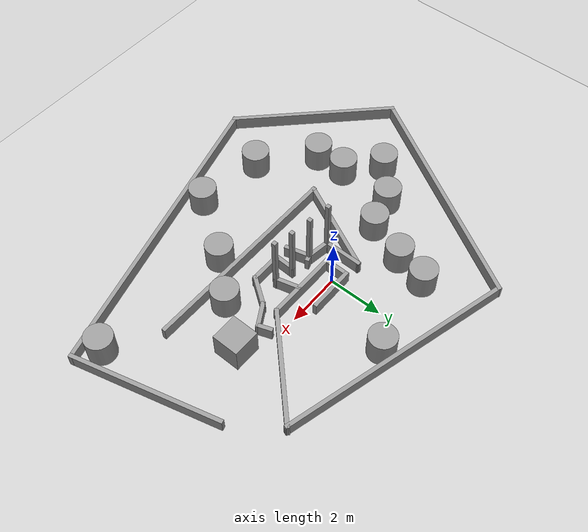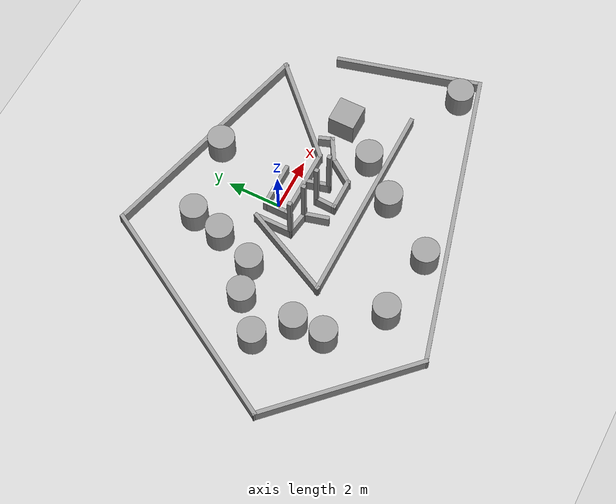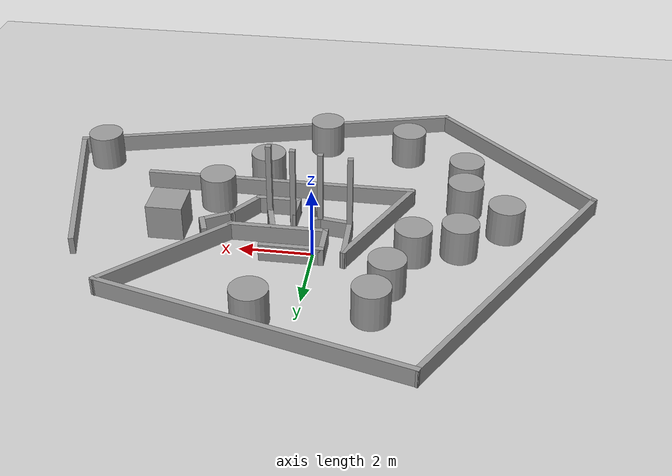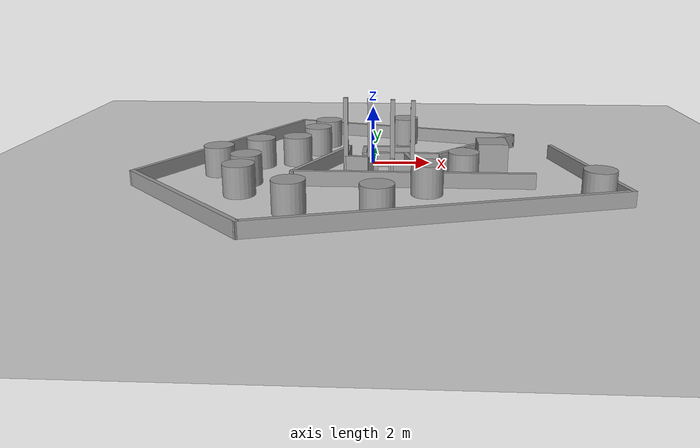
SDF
<sdf version="1.6">
 <world name="default">
  <light name="sun" type="directional">
   <pose>0 0 10 0 -0 0</pose>
   <diffuse>0.8 0.8 0.8 1</diffuse>
   <specular>0.1 0.1 0.1 1</specular>
   <attenuation>
    <range>1000</range>
    <constant>0.9</constant>
    <linear>0.01</linear>
    <quadratic>0.001</quadratic>
   </attenuation>
   <direction>-0.5 0.5 -1</direction>
  </light>
  <model name="ground_plane">
   <static>1</static>
   <link name="link">
    <collision name="collision">
     <geometry><plane><normal>0 0 1</normal><size>100 100</size></plane></geometry>
     <surface><friction><ode><mu>100</mu><mu2>50</mu2></ode></friction></surface>
    </collision>
    <visual name="visual">
     <cast_shadows>0</cast_shadows>
     <geometry><plane><normal>0 0 1</normal><size>100 100</size></plane></geometry>
     <material>
      <script><uri>file://media/materials/scripts/gazebo.material</uri><name>Gazebo/Grey</name></script>
     </material>
    </visual>
   </link>
  </model>
  <gravity>0 0 -9.8</gravity>
  <magnetic_field>6e-06 2.3e-05 -4.2e-05</magnetic_field>
  <atmosphere type="adiabatic"/>
  <physics name="default_physics" default="0" type="ode">
   <max_step_size>0.001</max_step_size>
   <real_time_factor>1</real_time_factor>
   <real_time_update_rate>1000</real_time_update_rate>
   <ode>
    <solver><type>quick</type><iters>50</iters><sor>0.8</sor></solver>
    <constraints>
     <cfm>0.0</cfm>
     <erp>0.2</erp>
     <contact_max_correcting_vel>0.1</contact_max_correcting_vel>
     <contact_surface_layer>0.0</contact_surface_layer>
    </constraints>
   </ode>
  </physics>
  <scene><ambient>0.4 0.4 0.4 1</ambient><background>0.7 0.7 0.7 1</background><shadows>1</shadows></scene>
  <spherical_coordinates>
   <surface_model>EARTH_WGS84</surface_model>
   <latitude_deg>0</latitude_deg>
   <longitude_deg>0</longitude_deg>
   <elevation>0</elevation>
   <heading_deg>0</heading_deg>
  </spherical_coordinates>
  <model name="cave">
   <pose>0.108528 -1.35421 0 0 -0 0</pose>
   <link name="Wall_0">
    <collision name="Wall_0_Collision">
     <geometry><box><size>1 0.15 0.5</size></box></geometry>
     <pose>0 0 0.25 0 -0 0</pose>
    </collision>
    <visual name="Wall_0_Visual">
     <pose>0 0 0.25 0 -0 0</pose>
     <geometry><box><size>1 0.15 0.5</size></box></geometry>
     <material>
      <script><uri>file://media/materials/scripts/gazebo.material</uri><name>Gazebo/Grey</name></script>
      <ambient>1 1 1 1</ambient>
     </material>
    </visual>
    <pose>-0.398528 1.29021 0 0 0 -1.5708</pose>
   </link>
   <link name="Wall_10">
    <collision name="Wall_10_Collision">
     <geometry><box><size>9 0.15 0.5</size></box></geometry>
     <pose>0 0 0.25 0 -0 0</pose>
    </collision>
    <visual name="Wall_10_Visual">
     <pose>0 0 0.25 0 -0 0</pose>
     <geometry><box><size>9 0.15 0.5</size></box></geometry>
     <material>
      <script><uri>file://media/materials/scripts/gazebo.material</uri><name>Gazebo/Grey</name></script>
      <ambient>1 1 1 1</ambient>
     </material>
    </visual>
    <pose>-5.41903 2.15821 0 0 0 -2.09441</pose>
   </link>
   <link name="Wall_12">
    <collision name="Wall_12_Collision">
     <geometry><box><size>6.25 0.15 0.5</size></box></geometry>
     <pose>0 0 0.25 0 -0 0</pose>
    </collision>
    <visual name="Wall_12_Visual">
     <pose>0 0 0.25 0 -0 0</pose>
     <geometry><box><size>6.25 0.15 0.5</size></box></geometry>
     <material>
      <script><uri>file://media/materials/scripts/gazebo.material</uri><name>Gazebo/Grey</name></script>
      <ambient>1 1 1 1</ambient>
     </material>
    </visual>
    <pose>-5.47453 -3.83029 0 0 0 -0.785282</pose>
   </link>
   <link name="Wall_14">
    <collision name="Wall_14_Collision">
     <geometry><box><size>11.5 0.15 0.5</size></box></geometry>
     <pose>0 0 0.25 0 -0 0</pose>
    </collision>
    <visual name="Wall_14_Visual">
     <pose>0 0 0.25 0 -0 0</pose>
     <geometry><box><size>11.5 0.15 0.5</size></box></geometry>
     <material>
      <script><uri>file://media/materials/scripts/gazebo.material</uri><name>Gazebo/Grey</name></script>
      <ambient>1 1 1 1</ambient>
     </material>
    </visual>
    <pose>2.16397 -4.51829 0 0 -0 0.261755</pose>
   </link>
   <link name="Wall_17">
    <collision name="Wall_17_Collision">
     <geometry><box><size>1.5 0.15 0.5</size></box></geometry>
     <pose>0 0 0.25 0 -0 0</pose>
    </collision>
    <visual name="Wall_17_Visual">
     <pose>0 0 0.25 0 -0 0</pose>
     <geometry><box><size>1.5 0.15 0.5</size></box></geometry>
     <material>
      <script><uri>file://media/materials/scripts/gazebo.material</uri><name>Gazebo/Grey</name></script>
      <ambient>1 1 1 1</ambient>
     </material>
    </visual>
    <pose>-0.999528 1.08421 0 0 0 -1.56635</pose>
   </link>
   <link name="Wall_18">
    <collision name="Wall_18_Collision">
     <geometry><box><size>0.15 0.15 2.5</size></box></geometry>
     <pose>0 0 1.25 0 -0 0</pose>
    </collision>
    <visual name="Wall_18_Visual">
     <pose>0 0 1.25 0 -0 0</pose>
     <geometry><box><size>0.15 0.15 2.5</size></box></geometry>
     <material>
      <script><uri>file://media/materials/scripts/gazebo.material</uri><name>Gazebo/Grey</name></script>
      <ambient>1 1 1 1</ambient>
     </material>
    </visual>
    <pose>-0.996528 0.409209 0 0 -0 0</pose>
   </link>
   <link name="Wall_19">
    <collision name="Wall_19_Collision">
     <geometry><box><size>0.974538 0.15 0.5</size></box></geometry>
     <pose>0 0 0.25 0 -0 0</pose>
    </collision>
    <visual name="Wall_19_Visual">
     <pose>0 0 0.25 0 -0 0</pose>
     <geometry><box><size>0.974538 0.15 0.5</size></box></geometry>
     <material>
      <script><uri>file://media/materials/scripts/gazebo.material</uri><name>Gazebo/Grey</name></script>
      <ambient>1 1 1 1</ambient>
     </material>
    </visual>
    <pose>-0.588528 0.349709 0 0 0 -0.144812</pose>
   </link>
   <link name="Wall_2">
    <collision name="Wall_2_Collision">
     <geometry><box><size>1.75 0.15 0.5</size></box></geometry>
     <pose>0 0 0.25 0 -0 0</pose>
    </collision>
    <visual name="Wall_2_Visual">
     <pose>0 0 0.25 0 -0 0</pose>
     <geometry><box><size>1.75 0.15 0.5</size></box></geometry>
     <material>
      <script><uri>file://media/materials/scripts/gazebo.material</uri><name>Gazebo/Grey</name></script>
      <ambient>1 1 1 1</ambient>
     </material>
    </visual>
    <pose>0.401472 1.71521 0 0 -0 0</pose>
   </link>
   <link name="Wall_20">
    <collision name="Wall_20_Collision">
     <geometry><box><size>0.15 0.15 2.5</size></box></geometry>
     <pose>0 0 1.25 0 -0 0</pose>
    </collision>
    <visual name="Wall_20_Visual">
     <pose>0 0 1.25 0 -0 0</pose>
     <geometry><box><size>0.15 0.15 2.5</size></box></geometry>
     <material>
      <script><uri>file://media/materials/scripts/gazebo.material</uri><name>Gazebo/Grey</name></script>
      <ambient>1 1 1 1</ambient>
     </material>
    </visual>
    <pose>-0.180528 0.290209 0 0 -0 0</pose>
   </link>
   <link name="Wall_21">
    <collision name="Wall_21_Collision">
     <geometry><box><size>0.15 0.15 2.5</size></box></geometry>
     <pose>0 0 1.25 0 -0 0</pose>
    </collision>
    <visual name="Wall_21_Visual">
     <pose>0 0 1.25 0 -0 0</pose>
     <geometry><box><size>0.15 0.15 2.5</size></box></geometry>
     <material>
      <script><uri>file://media/materials/scripts/gazebo.material</uri><name>Gazebo/Grey</name></script>
      <ambient>1 1 1 1</ambient>
     </material>
    </visual>
    <pose>-0.180528 0.290209 0 0 -0 0</pose>
   </link>
   <link name="Wall_22">
    <collision name="Wall_22_Collision">
     <geometry><box><size>0.319465 0.15 0.5</size></box></geometry>
     <pose>0 0 0.25 0 -0 0</pose>
    </collision>
    <visual name="Wall_22_Visual">
     <pose>0 0 0.25 0 -0 0</pose>
     <geometry><box><size>0.319465 0.15 0.5</size></box></geometry>
     <material>
      <script><uri>file://media/materials/scripts/gazebo.material</uri><name>Gazebo/Grey</name></script>
      <ambient>1 1 1 1</ambient>
     </material>
    </visual>
    <pose>-0.101028 0.318709 0 0 -0 0.344219</pose>
   </link>
   <link name="Wall_25">
    <collision name="Wall_25_Collision">
     <geometry><box><size>0.15 0.15 2.5</size></box></geometry>
     <pose>0 0 1.25 0 -0 0</pose>
    </collision>
    <visual name="Wall_25_Visual">
     <pose>0 0 1.25 0 -0 0</pose>
     <geometry><box><size>0.15 0.15 2.5</size></box></geometry>
     <material>
      <script><uri>file://media/materials/scripts/gazebo.material</uri><name>Gazebo/Grey</name></script>
      <ambient>1 1 1 1</ambient>
     </material>
    </visual>
    <pose>0.587472 0.180209 0 0 -0 0</pose>
   </link>
   <link name="Wall_27">
    <collision name="Wall_27_Collision">
     <geometry><box><size>1 0.15 0.5</size></box></geometry>
     <pose>0 0 0.25 0 -0 0</pose>
    </collision>
    <visual name="Wall_27_Visual">
     <pose>0 0 0.25 0 -0 0</pose>
     <geometry><box><size>1 0.15 0.5</size></box></geometry>
     <material>
      <script><uri>file://media/materials/scripts/gazebo.material</uri><name>Gazebo/Grey</name></script>
      <ambient>1 1 1 1</ambient>
     </material>
    </visual>
    <pose>-0.070528 -0.120291 0 0 0 -1.30898</pose>
   </link>
   <link name="Wall_29">
    <collision name="Wall_29_Collision">
     <geometry><box><size>1 0.15 0.5</size></box></geometry>
     <pose>0 0 0.25 0 -0 0</pose>
    </collision>
    <visual name="Wall_29_Visual">
     <pose>0 0 0.25 0 -0 0</pose>
     <geometry><box><size>1 0.15 0.5</size></box></geometry>
     <material>
      <script><uri>file://media/materials/scripts/gazebo.material</uri><name>Gazebo/Grey</name></script>
      <ambient>1 1 1 1</ambient>
     </material>
    </visual>
    <pose>1.15247 0.435709 0 0 0 -1.30898</pose>
   </link>
   <link name="Wall_30">
    <collision name="Wall_30_Collision">
     <geometry><box><size>0.15 0.15 2.5</size></box></geometry>
     <pose>0 0 1.25 0 -0 0</pose>
    </collision>
    <visual name="Wall_30_Visual">
     <pose>0 0 1.25 0 -0 0</pose>
     <geometry><box><size>0.15 0.15 2.5</size></box></geometry>
     <material>
      <script><uri>file://media/materials/scripts/gazebo.material</uri><name>Gazebo/Grey</name></script>
      <ambient>1 1 1 1</ambient>
     </material>
    </visual>
    <pose>1.26247 0.025209 0 0 -0 0</pose>
   </link>
   <link name="Wall_32">
    <collision name="Wall_32_Collision">
     <geometry><box><size>1.26456 0.15 0.5</size></box></geometry>
     <pose>0 0 0.25 0 -0 0</pose>
    </collision>
    <visual name="Wall_32_Visual">
     <pose>0 0 0.25 0 -0 0</pose>
     <geometry><box><size>1.26456 0.15 0.5</size></box></geometry>
     <material>
      <script><uri>file://media/materials/scripts/gazebo.material</uri><name>Gazebo/Grey</name></script>
      <ambient>1 1 1 1</ambient>
     </material>
    </visual>
    <pose>1.11947 -0.532791 0 0 -0 3.14159</pose>
   </link>
   <link name="Wall_33">
    <collision name="Wall_33_Collision">
     <geometry><box><size>0.864197 0.15 0.5</size></box></geometry>
     <pose>0 0 0.25 0 -0 0</pose>
    </collision>
    <visual name="Wall_33_Visual">
     <pose>0 0 0.25 0 -0 0</pose>
     <geometry><box><size>0.864197 0.15 0.5</size></box></geometry>
     <material>
      <script><uri>file://media/materials/scripts/gazebo.material</uri><name>Gazebo/Grey</name></script>
      <ambient>1 1 1 1</ambient>
     </material>
    </visual>
    <pose>0.574972 -0.176291 0 0 -0 1.53575</pose>
   </link>
   <link name="Wall_36">
    <collision name="Wall_36_Collision">
     <geometry><box><size>1.22376 0.15 0.5</size></box></geometry>
     <pose>0 0 0.25 0 -0 0</pose>
    </collision>
    <visual name="Wall_36_Visual">
     <pose>0 0 0.25 0 -0 0</pose>
     <geometry><box><size>1.22376 0.15 0.5</size></box></geometry>
     <material>
      <script><uri>file://media/materials/scripts/gazebo.material</uri><name>Gazebo/Grey</name></script>
      <ambient>1 1 1 1</ambient>
     </material>
    </visual>
    <pose>1.98447 -0.093291 0 0 -0 0.959536</pose>
   </link>
   <link name="Wall_37">
    <collision name="Wall_37_Collision">
     <geometry><box><size>0.99369 0.15 0.5</size></box></geometry>
     <pose>0 0 0.25 0 -0 0</pose>
    </collision>
    <visual name="Wall_37_Visual">
     <pose>0 0 0.25 0 -0 0</pose>
     <geometry><box><size>0.99369 0.15 0.5</size></box></geometry>
     <material>
      <script><uri>file://media/materials/scripts/gazebo.material</uri><name>Gazebo/Grey</name></script>
      <ambient>1 1 1 1</ambient>
     </material>
    </visual>
    <pose>2.65697 0.558709 0 0 -0 0.527819</pose>
   </link>
   <link name="Wall_38">
    <collision name="Wall_38_Collision">
     <geometry><box><size>0.587441 0.15 0.5</size></box></geometry>
     <pose>0 0 0.25 0 -0 0</pose>
    </collision>
    <visual name="Wall_38_Visual">
     <pose>0 0 0.25 0 -0 0</pose>
     <geometry><box><size>0.587441 0.15 0.5</size></box></geometry>
     <material>
      <script><uri>file://media/materials/scripts/gazebo.material</uri><name>Gazebo/Grey</name></script>
      <ambient>1 1 1 1</ambient>
     </material>
    </visual>
    <pose>2.94697 0.976709 0 0 -0 1.91859</pose>
   </link>
   <link name="Wall_4">
    <collision name="Wall_4_Collision">
     <geometry><box><size>2.75 0.15 0.5</size></box></geometry>
     <pose>0 0 0.25 0 -0 0</pose>
    </collision>
    <visual name="Wall_4_Visual">
     <pose>0 0 0.25 0 -0 0</pose>
     <geometry><box><size>2.75 0.15 0.5</size></box></geometry>
     <material>
      <script><uri>file://media/materials/scripts/gazebo.material</uri><name>Gazebo/Grey</name></script>
      <ambient>1 1 1 1</ambient>
     </material>
    </visual>
    <pose>0.901472 0.865209 0 0 -0 0</pose>
   </link>
   <link name="Wall_40">
    <collision name="Wall_40_Collision">
     <geometry><box><size>3.71653 0.15 0.5</size></box></geometry>
     <pose>0 0 0.25 0 -0 0</pose>
    </collision>
    <visual name="Wall_40_Visual">
     <pose>0 0 0.25 0 -0 0</pose>
     <geometry><box><size>3.71653 0.15 0.5</size></box></geometry>
     <material>
      <script><uri>file://media/materials/scripts/gazebo.material</uri><name>Gazebo/Grey</name></script>
      <ambient>1 1 1 1</ambient>
     </material>
    </visual>
    <pose>-1.77903 0.153709 0 0 0 -2.02128</pose>
   </link>
   <link name="Wall_42">
    <collision name="Wall_42_Collision">
     <geometry><box><size>7.756 0.15 0.5</size></box></geometry>
     <pose>0 0 0.25 0 -0 0</pose>
    </collision>
    <visual name="Wall_42_Visual">
     <pose>0 0 0.25 0 -0 0</pose>
     <geometry><box><size>7.756 0.15 0.5</size></box></geometry>
     <material>
      <script><uri>file://media/materials/scripts/gazebo.material</uri><name>Gazebo/Grey</name></script>
      <ambient>1 1 1 1</ambient>
     </material>
    </visual>
    <pose>1.24747 -1.45179 0 0 -0 0</pose>
   </link>
   <link name="Wall_44">
    <collision name="Wall_44_Collision">
     <geometry><box><size>5.5 0.15 0.5</size></box></geometry>
     <pose>0 0 0.25 0 -0 0</pose>
    </collision>
    <visual name="Wall_44_Visual">
     <pose>0 0 0.25 0 -0 0</pose>
     <geometry><box><size>5.5 0.15 0.5</size></box></geometry>
     <material>
      <script><uri>file://media/materials/scripts/gazebo.material</uri><name>Gazebo/Grey</name></script>
      <ambient>1 1 1 1</ambient>
     </material>
    </visual>
    <pose>6.95297 -0.465791 0 0 -0 1.83264</pose>
   </link>
   <link name="Wall_6">
    <collision name="Wall_6_Collision">
     <geometry><box><size>4.25 0.15 0.5</size></box></geometry>
     <pose>0 0 0.25 0 -0 0</pose>
    </collision>
    <visual name="Wall_6_Visual">
     <pose>0 0 0.25 0 -0 0</pose>
     <geometry><box><size>4.25 0.15 0.5</size></box></geometry>
     <material>
      <script><uri>file://media/materials/scripts/gazebo.material</uri><name>Gazebo/Grey</name></script>
      <ambient>1 1 1 1</ambient>
     </material>
    </visual>
    <pose>3.65097 2.31471 0 0 -0 0.785398</pose>
   </link>
   <link name="Wall_8">
    <collision name="Wall_8_Collision">
     <geometry><box><size>8.75 0.15 0.5</size></box></geometry>
     <pose>0 0 0.25 0 -0 0</pose>
    </collision>
    <visual name="Wall_8_Visual">
     <pose>0 0 0.25 0 -0 0</pose>
     <geometry><box><size>8.75 0.15 0.5</size></box></geometry>
     <material>
      <script><uri>file://media/materials/scripts/gazebo.material</uri><name>Gazebo/Grey</name></script>
      <ambient>1 1 1 1</ambient>
     </material>
    </visual>
    <pose>0.946972 4.87721 0 0 -0 2.87978</pose>
   </link>
   <static>1</static>
  </model>
  <model name="unit_cylinder_0_1">
   <pose>1.10856 2.91349 0.499996 3e-06 1e-06 -0</pose>
   <link name="link">
    <inertial>
     <mass>1</mass>
     <inertia><ixx>0.145833</ixx><ixy>0</ixy><ixz>0</ixz><iyy>0.145833</iyy><iyz>0</iyz><izz>0.125</izz></inertia>
    </inertial>
    <collision name="collision">
     <geometry><cylinder><radius>0.5</radius><length>1</length></cylinder></geometry>
    </collision>
    <visual name="visual">
     <geometry><cylinder><radius>0.5</radius><length>1</length></cylinder></geometry>
     <material>
      <script><name>Gazebo/Grey</name><uri>file://media/materials/scripts/gazebo.material</uri></script>
     </material>
    </visual>
   </link>
  </model>
  <model name="unit_cylinder_0_4">
   <pose>3.00756 -2.13464 0.499997 4e-06 2e-06 -0</pose>
   <link name="link">
    <inertial>
     <mass>1</mass>
     <inertia><ixx>0.145833</ixx><ixy>0</ixy><ixz>0</ixz><iyy>0.145833</iyy><iyz>0</iyz><izz>0.125</izz></inertia>
    </inertial>
    <collision name="collision">
     <geometry><cylinder><radius>0.5</radius><length>1</length></cylinder></geometry>
    </collision>
    <visual name="visual">
     <geometry><cylinder><radius>0.5</radius><length>1</length></cylinder></geometry>
     <material>
      <script><name>Gazebo/Grey</name><uri>file://media/materials/scripts/gazebo.material</uri></script>
     </material>
    </visual>
   </link>
  </model>
  <model name="unit_box_1">
   <pose>4.07465 -0.691558 0.5 0 -0 5e-06</pose>
   <link name="link">
    <inertial>
     <mass>1</mass>
     <inertia>
      <ixx>0.166667</ixx>
      <ixy>0</ixy>
      <ixz>0</ixz>
      <iyy>0.166667</iyy>
      <iyz>0</iyz>
      <izz>0.166667</izz>
     </inertia>
    </inertial>
    <collision name="collision"><geometry><box><size>1 1 1</size></box></geometry></collision>
    <visual name="visual">
     <geometry><box><size>1 1 1</size></box></geometry>
     <material>
      <script><name>Gazebo/Grey</name><uri>file://media/materials/scripts/gazebo.material</uri></script>
     </material>
    </visual>
   </link>
  </model>
  <model name="unit_cylinder_0_6">
   <pose>-3.95081 -2.64166 0.499992 -3e-06 3e-06 0</pose>
   <link name="link">
    <inertial>
     <mass>1</mass>
     <inertia><ixx>0.145833</ixx><ixy>0</ixy><ixz>0</ixz><iyy>0.145833</iyy><iyz>0</iyz><izz>0.125</izz></inertia>
    </inertial>
    <collision name="collision">
     <geometry><cylinder><radius>0.5</radius><length>1</length></cylinder></geometry>
    </collision>
    <visual name="visual">
     <geometry><cylinder><radius>0.5</radius><length>1</length></cylinder></geometry>
     <material>
      <script><name>Gazebo/Grey</name><uri>file://media/materials/scripts/gazebo.material</uri></script>
     </material>
    </visual>
   </link>
  </model>
  <model name="unit_cylinder_0_7">
   <pose>-3.93724 -3.80041 0.499992 -3e-06 3e-06 0</pose>
   <link name="link">
    <inertial>
     <mass>1</mass>
     <inertia><ixx>0.145833</ixx><ixy>0</ixy><ixz>0</ixz><iyy>0.145833</iyy><iyz>0</iyz><izz>0.125</izz></inertia>
    </inertial>
    <collision name="collision">
     <geometry><cylinder><radius>0.5</radius><length>1</length></cylinder></geometry>
    </collision>
    <visual name="visual">
     <geometry><cylinder><radius>0.5</radius><length>1</length></cylinder></geometry>
     <material>
      <script><name>Gazebo/Grey</name><uri>file://media/materials/scripts/gazebo.material</uri></script>
     </material>
    </visual>
   </link>
  </model>
  <model name="unit_cylinder_0_9">
   <pose>-2.16646 -5.33523 0.499996 4e-06 2e-06 -0</pose>
   <link name="link">
    <inertial>
     <mass>1</mass>
     <inertia><ixx>0.145833</ixx><ixy>0</ixy><ixz>0</ixz><iyy>0.145833</iyy><iyz>0</iyz><izz>0.125</izz></inertia>
    </inertial>
    <collision name="collision">
     <geometry><cylinder><radius>0.5</radius><length>1</length></cylinder></geometry>
    </collision>
    <visual name="visual">
     <geometry><cylinder><radius>0.5</radius><length>1</length></cylinder></geometry>
     <material>
      <script><name>Gazebo/Grey</name><uri>file://media/materials/scripts/gazebo.material</uri></script>
     </material>
    </visual>
   </link>
  </model>
  <model name="unit_cylinder_0_15">
   <pose>0.355325 -5.62289 0.499998 3e-06 4e-06 -0</pose>
   <link name="link">
    <inertial>
     <mass>1</mass>
     <inertia><ixx>0.145833</ixx><ixy>0</ixy><ixz>0</ixz><iyy>0.145833</iyy><iyz>0</iyz><izz>0.125</izz></inertia>
    </inertial>
    <collision name="collision">
     <geometry><cylinder><radius>0.5</radius><length>1</length></cylinder></geometry>
    </collision>
    <visual name="visual">
     <geometry><cylinder><radius>0.5</radius><length>1</length></cylinder></geometry>
     <material>
      <script><name>Gazebo/Grey</name><uri>file://media/materials/scripts/gazebo.material</uri></script>
     </material>
    </visual>
   </link>
  </model>
  <model name="unit_cylinder_0_16">
   <pose>6.87708 -3.97631 0.499996 -4e-06 3e-06 0</pose>
   <link name="link">
    <inertial>
     <mass>1</mass>
     <inertia><ixx>0.145833</ixx><ixy>0</ixy><ixz>0</ixz><iyy>0.145833</iyy><iyz>0</iyz><izz>0.125</izz></inertia>
    </inertial>
    <collision name="collision">
     <geometry><cylinder><radius>0.5</radius><length>1</length></cylinder></geometry>
    </collision>
    <visual name="visual">
     <geometry><cylinder><radius>0.5</radius><length>1</length></cylinder></geometry>
     <material>
      <script><name>Gazebo/Grey</name><uri>file://media/materials/scripts/gazebo.material</uri></script>
     </material>
    </visual>
   </link>
  </model>
  <model name="unit_cylinder_0_17">
   <pose>-1.82164 2.42512 0.499998 3e-06 4e-06 -0</pose>
   <link name="link">
    <inertial>
     <mass>1</mass>
     <inertia><ixx>0.145833</ixx><ixy>0</ixy><ixz>0</ixz><iyy>0.145833</iyy><iyz>0</iyz><izz>0.125</izz></inertia>
    </inertial>
    <collision name="collision">
     <geometry><cylinder><radius>0.5</radius><length>1</length></cylinder></geometry>
    </collision>
    <visual name="visual">
     <geometry><cylinder><radius>0.5</radius><length>1</length></cylinder></geometry>
     <material>
      <script><name>Gazebo/Grey</name><uri>file://media/materials/scripts/gazebo.material</uri></script>
     </material>
    </visual>
   </link>
  </model>
  <model name="unit_cylinder_0_18">
   <pose>-2.09892 1.24154 0.499993 -3e-06 2e-06 0</pose>
   <link name="link">
    <inertial>
     <mass>1</mass>
     <inertia><ixx>0.145833</ixx><ixy>0</ixy><ixz>0</ixz><iyy>0.145833</iyy><iyz>0</iyz><izz>0.125</izz></inertia>
    </inertial>
    <collision name="collision">
     <geometry><cylinder><radius>0.5</radius><length>1</length></cylinder></geometry>
    </collision>
    <visual name="visual">
     <geometry><cylinder><radius>0.5</radius><length>1</length></cylinder></geometry>
     <material>
      <script><name>Gazebo/Grey</name><uri>file://media/materials/scripts/gazebo.material</uri></script>
     </material>
    </visual>
   </link>
  </model>
  <model name="unit_cylinder_0_19">
   <pose>-2.65041 -0.232058 0.499998 3e-06 -2e-06 0</pose>
   <link name="link">
    <inertial>
     <mass>1</mass>
     <inertia><ixx>0.145833</ixx><ixy>0</ixy><ixz>0</ixz><iyy>0.145833</iyy><iyz>0</iyz><izz>0.125</izz></inertia>
    </inertial>
    <collision name="collision">
     <geometry><cylinder><radius>0.5</radius><length>1</length></cylinder></geometry>
    </collision>
    <visual name="visual">
     <geometry><cylinder><radius>0.5</radius><length>1</length></cylinder></geometry>
     <material>
      <script><name>Gazebo/Grey</name><uri>file://media/materials/scripts/gazebo.material</uri></script>
     </material>
    </visual>
   </link>
  </model>
  <model name="unit_cylinder_0_21">
   <pose>-3.86922 -0.578851 0.499998 3e-06 -2e-06 0</pose>
   <link name="link">
    <inertial>
     <mass>1</mass>
     <inertia><ixx>0.145833</ixx><ixy>0</ixy><ixz>0</ixz><iyy>0.145833</iyy><iyz>0</iyz><izz>0.125</izz></inertia>
    </inertial>
    <collision name="collision">
     <geometry><cylinder><radius>0.5</radius><length>1</length></cylinder></geometry>
    </collision>
    <visual name="visual">
     <geometry><cylinder><radius>0.5</radius><length>1</length></cylinder></geometry>
     <material>
      <script><name>Gazebo/Grey</name><uri>file://media/materials/scripts/gazebo.material</uri></script>
     </material>
    </visual>
   </link>
  </model>
  <model name="unit_cylinder_0_22">
   <pose>-5.07306 -1.63595 0.499992 -3e-06 3e-06 0</pose>
   <link name="link">
    <inertial>
     <mass>1</mass>
     <inertia><ixx>0.145833</ixx><ixy>0</ixy><ixz>0</ixz><iyy>0.145833</iyy><iyz>0</iyz><izz>0.125</izz></inertia>
    </inertial>
    <collision name="collision">
     <geometry><cylinder><radius>0.5</radius><length>1</length></cylinder></geometry>
    </collision>
    <visual name="visual">
     <geometry><cylinder><radius>0.5</radius><length>1</length></cylinder></geometry>
     <material>
      <script><name>Gazebo/Grey</name><uri>file://media/materials/scripts/gazebo.material</uri></script>
     </material>
    </visual>
   </link>
  </model>
  <model name="unit_cylinder_0_24">
   <pose>1.80437 -3.49995 0.499998 3e-06 -4e-06 0</pose>
   <link name="link">
    <inertial>
     <mass>1</mass>
     <inertia><ixx>0.145833</ixx><ixy>0</ixy><ixz>0</ixz><iyy>0.145833</iyy><iyz>0</iyz><izz>0.125</izz></inertia>
    </inertial>
    <collision name="collision">
     <geometry><cylinder><radius>0.5</radius><length>1</length></cylinder></geometry>
    </collision>
    <visual name="visual">
     <geometry><cylinder><radius>0.5</radius><length>1</length></cylinder></geometry>
     <material>
      <script><name>Gazebo/Grey</name><uri>file://media/materials/scripts/gazebo.material</uri></script>
     </material>
    </visual>
   </link>
  </model>
 </world>
</sdf>
